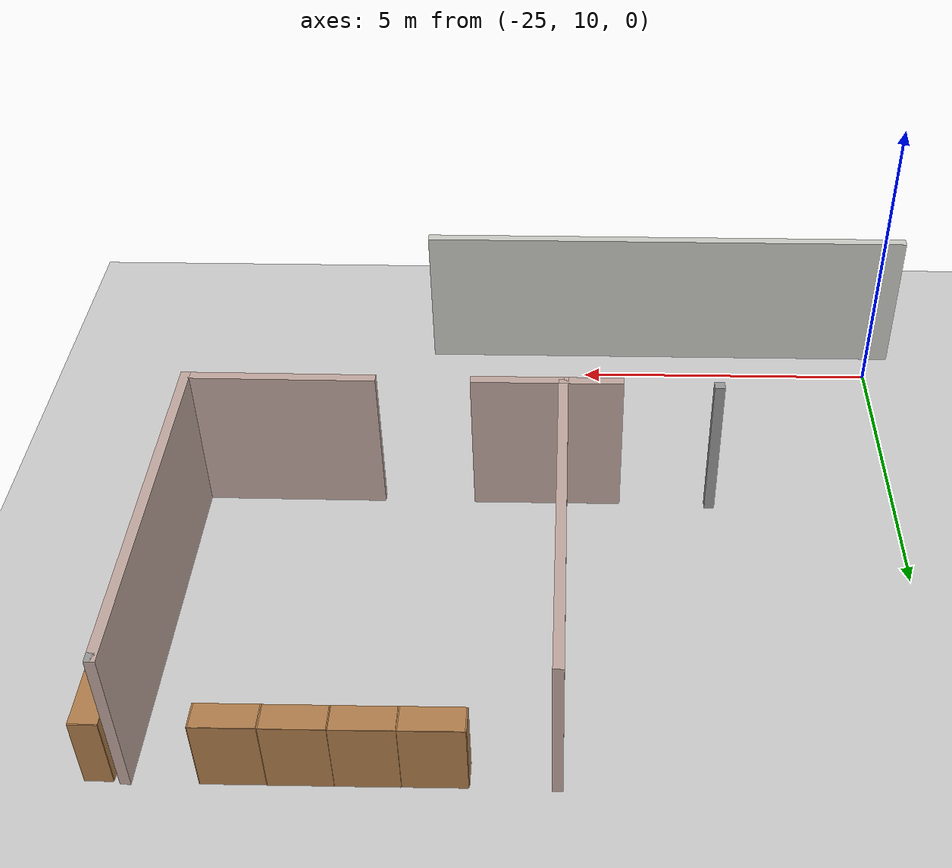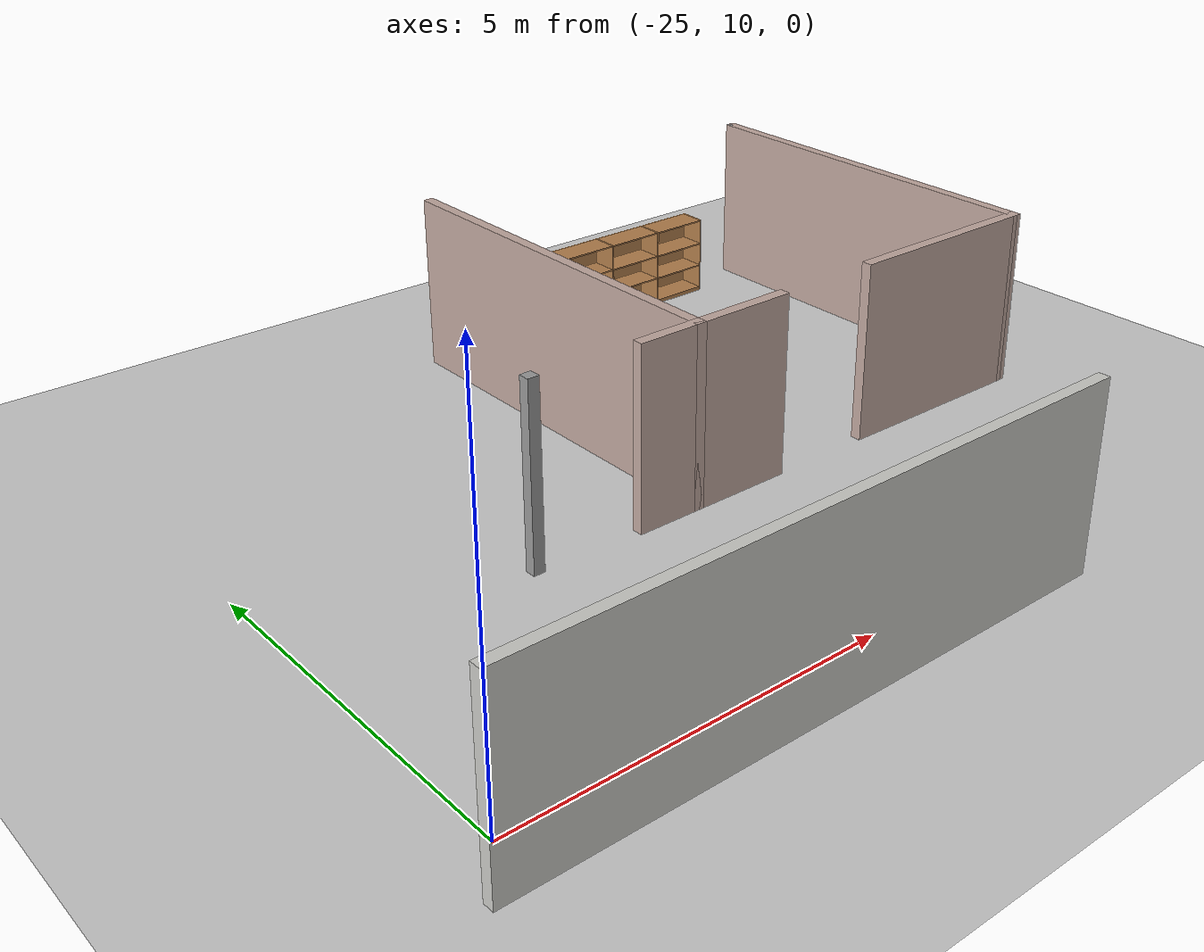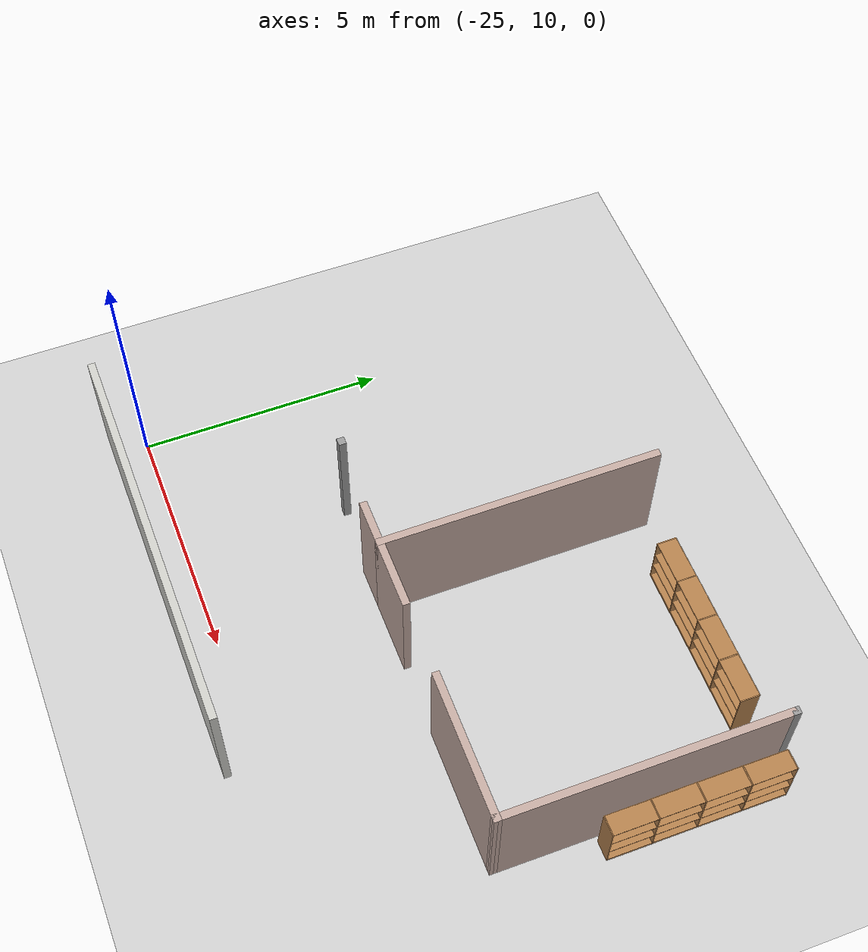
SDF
<sdf version="1.6">
 <world name="default">
  <model name="ground_plane">
   <static>1</static>
   <link name="link">
    <collision name="collision">
     <geometry><plane><normal>0 0 1</normal><size>100 100</size></plane></geometry>
     <surface><friction><ode><mu>100</mu><mu2>50</mu2></ode></friction></surface>
    </collision>
    <visual name="visual">
     <cast_shadows>0</cast_shadows>
     <geometry><plane><normal>0 0 1</normal><size>100 100</size></plane></geometry>
     <material>
      <script><uri>file://media/materials/scripts/gazebo.material</uri><name>Gazebo/Grey</name></script>
     </material>
    </visual>
   </link>
  </model>
  <model name="floor">
   <link name="Wall_222">
    <pose>-22.6395 10.6319 0 0 -0 3.14159</pose>
    <visual name="Wall_222_Visual">
     <pose>0 0 1.25 0 -0 0</pose>
     <geometry><box><size>8.25 0.15 2.5</size></box></geometry>
     <material>
      <script><uri>file://media/materials/scripts/gazebo.material</uri><name>Gazebo/CeilingTiled</name></script>
      <ambient>0.760784 0.662745 0.627451 1</ambient>
     </material>
     <meta><layer>0</layer></meta>
    </visual>
    <collision name="Wall_222_Collision">
     <pose>0 0 1.25 0 -0 0</pose>
     <geometry><box><size>8.25 0.15 2.5</size></box></geometry>
     <surface>
      <friction>
       <ode><mu>1</mu><mu2>1</mu2><fdir1>0 0 0</fdir1><slip1>0</slip1><slip2>0</slip2></ode>
       <torsional>
        <coefficient>1</coefficient>
        <patch_radius>0</patch_radius>
        <surface_radius>0</surface_radius>
        <use_patch_radius>1</use_patch_radius>
        <ode><slip>0</slip></ode>
       </torsional>
      </friction>
      <bounce><restitution_coefficient>0</restitution_coefficient><threshold>1e+06</threshold></bounce>
      <contact>
       <collide_without_contact>0</collide_without_contact>
       <collide_without_contact_bitmask>1</collide_without_contact_bitmask>
       <collide_bitmask>1</collide_bitmask>
       <ode>
        <soft_cfm>0</soft_cfm>
        <soft_erp>0.2</soft_erp>
        <kp>1e+13</kp>
        <kd>1</kd>
        <max_vel>0.01</max_vel>
        <min_depth>0</min_depth>
       </ode>
       <bullet>
        <split_impulse>1</split_impulse>
        <split_impulse_penetration_threshold>-0.01</split_impulse_penetration_threshold>
        <soft_cfm>0</soft_cfm>
        <soft_erp>0.2</soft_erp>
        <kp>1e+13</kp>
        <kd>1</kd>
       </bullet>
      </contact>
     </surface>
    </collision>
   </link>
   <link name="Wall_59">
    <pose>-23.2723 14.6342 0 0 -0 0</pose>
    <visual name="Wall_59_Visual">
     <pose>0 0 1.25 0 -0 0</pose>
     <geometry><box><size>0.16 0.15 2.5</size></box></geometry>
     <material>
      <script><uri>file://media/materials/scripts/gazebo.material</uri><name>Gazebo/Grey</name></script>
      <ambient>1 1 1 1</ambient>
     </material>
     <meta><layer>0</layer></meta>
    </visual>
    <collision name="Wall_59_Collision">
     <pose>0 0 1.25 0 -0 0</pose>
     <geometry><box><size>0.16 0.15 2.5</size></box></geometry>
     <surface>
      <friction>
       <ode><mu>1</mu><mu2>1</mu2><fdir1>0 0 0</fdir1><slip1>0</slip1><slip2>0</slip2></ode>
       <torsional>
        <coefficient>1</coefficient>
        <patch_radius>0</patch_radius>
        <surface_radius>0</surface_radius>
        <use_patch_radius>1</use_patch_radius>
        <ode><slip>0</slip></ode>
       </torsional>
      </friction>
      <bounce><restitution_coefficient>0</restitution_coefficient><threshold>1e+06</threshold></bounce>
      <contact>
       <collide_without_contact>0</collide_without_contact>
       <collide_without_contact_bitmask>1</collide_without_contact_bitmask>
       <collide_bitmask>1</collide_bitmask>
       <ode>
        <soft_cfm>0</soft_cfm>
        <soft_erp>0.2</soft_erp>
        <kp>1e+13</kp>
        <kd>1</kd>
        <max_vel>0.01</max_vel>
        <min_depth>0</min_depth>
       </ode>
       <bullet>
        <split_impulse>1</split_impulse>
        <split_impulse_penetration_threshold>-0.01</split_impulse_penetration_threshold>
        <soft_cfm>0</soft_cfm>
        <soft_erp>0.2</soft_erp>
        <kp>1e+13</kp>
        <kd>1</kd>
       </bullet>
      </contact>
     </surface>
    </collision>
   </link>
   <link name="Wall_61">
    <pose>-21.3201 14.5529 0 0 -0 0</pose>
    <visual name="Wall_61_Visual">
     <pose>0 0 1.25 0 -0 0</pose>
     <geometry><box><size>1 0.15 2.5</size></box></geometry>
     <material>
      <script><uri>file://media/materials/scripts/gazebo.material</uri><name>Gazebo/Grey</name></script>
      <ambient>0.760784 0.662745 0.627451 1</ambient>
     </material>
     <meta><layer>0</layer></meta>
    </visual>
    <collision name="Wall_61_Collision">
     <pose>0 0 1.25 0 -0 0</pose>
     <geometry><box><size>1 0.15 2.5</size></box></geometry>
     <surface>
      <friction>
       <ode><mu>1</mu><mu2>1</mu2><fdir1>0 0 0</fdir1><slip1>0</slip1><slip2>0</slip2></ode>
       <torsional>
        <coefficient>1</coefficient>
        <patch_radius>0</patch_radius>
        <surface_radius>0</surface_radius>
        <use_patch_radius>1</use_patch_radius>
        <ode><slip>0</slip></ode>
       </torsional>
      </friction>
      <bounce><restitution_coefficient>0</restitution_coefficient><threshold>1e+06</threshold></bounce>
      <contact>
       <collide_without_contact>0</collide_without_contact>
       <collide_without_contact_bitmask>1</collide_without_contact_bitmask>
       <collide_bitmask>1</collide_bitmask>
       <ode>
        <soft_cfm>0</soft_cfm>
        <soft_erp>0.2</soft_erp>
        <kp>1e+13</kp>
        <kd>1</kd>
        <max_vel>0.01</max_vel>
        <min_depth>0</min_depth>
       </ode>
       <bullet>
        <split_impulse>1</split_impulse>
        <split_impulse_penetration_threshold>-0.01</split_impulse_penetration_threshold>
        <soft_cfm>0</soft_cfm>
        <soft_erp>0.2</soft_erp>
        <kp>1e+13</kp>
        <kd>1</kd>
       </bullet>
      </contact>
     </surface>
    </collision>
   </link>
   <link name="Wall_62">
    <pose>-20.8951 17.3529 0 0 -0 1.5708</pose>
    <visual name="Wall_62_Visual">
     <pose>0 0 1.25 0 -0 0</pose>
     <geometry><box><size>5.75 0.15 2.5</size></box></geometry>
     <material>
      <script><uri>file://media/materials/scripts/gazebo.material</uri><name>Gazebo/Grey</name></script>
      <ambient>0.760784 0.662745 0.627451 1</ambient>
     </material>
     <meta><layer>0</layer></meta>
    </visual>
    <collision name="Wall_62_Collision">
     <pose>0 0 1.25 0 -0 0</pose>
     <geometry><box><size>5.75 0.15 2.5</size></box></geometry>
     <surface>
      <friction>
       <ode><mu>1</mu><mu2>1</mu2><fdir1>0 0 0</fdir1><slip1>0</slip1><slip2>0</slip2></ode>
       <torsional>
        <coefficient>1</coefficient>
        <patch_radius>0</patch_radius>
        <surface_radius>0</surface_radius>
        <use_patch_radius>1</use_patch_radius>
        <ode><slip>0</slip></ode>
       </torsional>
      </friction>
      <bounce><restitution_coefficient>0</restitution_coefficient><threshold>1e+06</threshold></bounce>
      <contact>
       <collide_without_contact>0</collide_without_contact>
       <collide_without_contact_bitmask>1</collide_without_contact_bitmask>
       <collide_bitmask>1</collide_bitmask>
       <ode>
        <soft_cfm>0</soft_cfm>
        <soft_erp>0.2</soft_erp>
        <kp>1e+13</kp>
        <kd>1</kd>
        <max_vel>0.01</max_vel>
        <min_depth>0</min_depth>
       </ode>
       <bullet>
        <split_impulse>1</split_impulse>
        <split_impulse_penetration_threshold>-0.01</split_impulse_penetration_threshold>
        <soft_cfm>0</soft_cfm>
        <soft_erp>0.2</soft_erp>
        <kp>1e+13</kp>
        <kd>1</kd>
       </bullet>
      </contact>
     </surface>
    </collision>
   </link>
   <link name="Wall_64">
    <pose>-20.2201 14.5529 0 0 -0 0</pose>
    <visual name="Wall_64_Visual">
     <pose>0 0 1.25 0 -0 0</pose>
     <geometry><box><size>1.5 0.15 2.5</size></box></geometry>
     <material>
      <script><uri>file://media/materials/scripts/gazebo.material</uri><name>Gazebo/Grey</name></script>
      <ambient>0.760784 0.662745 0.627451 1</ambient>
     </material>
     <meta><layer>0</layer></meta>
    </visual>
    <collision name="Wall_64_Collision">
     <pose>0 0 1.25 0 -0 0</pose>
     <geometry><box><size>1.5 0.15 2.5</size></box></geometry>
     <surface>
      <friction>
       <ode><mu>1</mu><mu2>1</mu2><fdir1>0 0 0</fdir1><slip1>0</slip1><slip2>0</slip2></ode>
       <torsional>
        <coefficient>1</coefficient>
        <patch_radius>0</patch_radius>
        <surface_radius>0</surface_radius>
        <use_patch_radius>1</use_patch_radius>
        <ode><slip>0</slip></ode>
       </torsional>
      </friction>
      <bounce><restitution_coefficient>0</restitution_coefficient><threshold>1e+06</threshold></bounce>
      <contact>
       <collide_without_contact>0</collide_without_contact>
       <collide_without_contact_bitmask>1</collide_without_contact_bitmask>
       <collide_bitmask>1</collide_bitmask>
       <ode>
        <soft_cfm>0</soft_cfm>
        <soft_erp>0.2</soft_erp>
        <kp>1e+13</kp>
        <kd>1</kd>
        <max_vel>0.01</max_vel>
        <min_depth>0</min_depth>
       </ode>
       <bullet>
        <split_impulse>1</split_impulse>
        <split_impulse_penetration_threshold>-0.01</split_impulse_penetration_threshold>
        <soft_cfm>0</soft_cfm>
        <soft_erp>0.2</soft_erp>
        <kp>1e+13</kp>
        <kd>1</kd>
       </bullet>
      </contact>
     </surface>
    </collision>
   </link>
   <link name="Wall_66">
    <pose>-16.5201 14.5452 0 0 0 -0.005419</pose>
    <visual name="Wall_66_Visual">
     <pose>0 0 1.25 0 -0 0</pose>
     <geometry><box><size>3.00004 0.15 2.5</size></box></geometry>
     <material>
      <script><uri>file://media/materials/scripts/gazebo.material</uri><name>Gazebo/Grey</name></script>
      <ambient>0.760784 0.662745 0.627451 1</ambient>
     </material>
     <meta><layer>0</layer></meta>
    </visual>
    <collision name="Wall_66_Collision">
     <pose>0 0 1.25 0 -0 0</pose>
     <geometry><box><size>3.00004 0.15 2.5</size></box></geometry>
     <surface>
      <friction>
       <ode><mu>1</mu><mu2>1</mu2><fdir1>0 0 0</fdir1><slip1>0</slip1><slip2>0</slip2></ode>
       <torsional>
        <coefficient>1</coefficient>
        <patch_radius>0</patch_radius>
        <surface_radius>0</surface_radius>
        <use_patch_radius>1</use_patch_radius>
        <ode><slip>0</slip></ode>
       </torsional>
      </friction>
      <bounce><restitution_coefficient>0</restitution_coefficient><threshold>1e+06</threshold></bounce>
      <contact>
       <collide_without_contact>0</collide_without_contact>
       <collide_without_contact_bitmask>1</collide_without_contact_bitmask>
       <collide_bitmask>1</collide_bitmask>
       <ode>
        <soft_cfm>0</soft_cfm>
        <soft_erp>0.2</soft_erp>
        <kp>1e+13</kp>
        <kd>1</kd>
        <max_vel>0.01</max_vel>
        <min_depth>0</min_depth>
       </ode>
       <bullet>
        <split_impulse>1</split_impulse>
        <split_impulse_penetration_threshold>-0.01</split_impulse_penetration_threshold>
        <soft_cfm>0</soft_cfm>
        <soft_erp>0.2</soft_erp>
        <kp>1e+13</kp>
        <kd>1</kd>
       </bullet>
      </contact>
     </surface>
    </collision>
   </link>
   <link name="Wall_67">
    <pose>-15.0951 17.3452 0 0 -0 1.5708</pose>
    <visual name="Wall_67_Visual">
     <pose>0 0 1.25 0 -0 0</pose>
     <geometry><box><size>5.76544 0.15 2.5</size></box></geometry>
     <material>
      <script><uri>file://media/materials/scripts/gazebo.material</uri><name>Gazebo/Grey</name></script>
      <ambient>0.760784 0.662745 0.627451 1</ambient>
     </material>
     <meta><layer>0</layer></meta>
    </visual>
    <collision name="Wall_67_Collision">
     <pose>0 0 1.25 0 -0 0</pose>
     <geometry><box><size>5.76544 0.15 2.5</size></box></geometry>
     <surface>
      <friction>
       <ode><mu>1</mu><mu2>1</mu2><fdir1>0 0 0</fdir1><slip1>0</slip1><slip2>0</slip2></ode>
       <torsional>
        <coefficient>1</coefficient>
        <patch_radius>0</patch_radius>
        <surface_radius>0</surface_radius>
        <use_patch_radius>1</use_patch_radius>
        <ode><slip>0</slip></ode>
       </torsional>
      </friction>
      <bounce><restitution_coefficient>0</restitution_coefficient><threshold>1e+06</threshold></bounce>
      <contact>
       <collide_without_contact>0</collide_without_contact>
       <collide_without_contact_bitmask>1</collide_without_contact_bitmask>
       <collide_bitmask>1</collide_bitmask>
       <ode>
        <soft_cfm>0</soft_cfm>
        <soft_erp>0.2</soft_erp>
        <kp>1e+13</kp>
        <kd>1</kd>
        <max_vel>0.01</max_vel>
        <min_depth>0</min_depth>
       </ode>
       <bullet>
        <split_impulse>1</split_impulse>
        <split_impulse_penetration_threshold>-0.01</split_impulse_penetration_threshold>
        <soft_cfm>0</soft_cfm>
        <soft_erp>0.2</soft_erp>
        <kp>1e+13</kp>
        <kd>1</kd>
       </bullet>
      </contact>
     </surface>
    </collision>
   </link>
   <link name="Wall_68">
    <pose>-15.0951 20.1529 0 0 -0 0</pose>
    <visual name="Wall_68_Visual">
     <pose>0 0 1.25 0 -0 0</pose>
     <geometry><box><size>0.15 0.15 2.5</size></box></geometry>
     <material>
      <script><uri>file://media/materials/scripts/gazebo.material</uri><name>Gazebo/Grey</name></script>
      <ambient>1 1 1 1</ambient>
     </material>
     <meta><layer>0</layer></meta>
    </visual>
    <collision name="Wall_68_Collision">
     <pose>0 0 1.25 0 -0 0</pose>
     <geometry><box><size>0.15 0.15 2.5</size></box></geometry>
     <surface>
      <friction>
       <ode><mu>1</mu><mu2>1</mu2><fdir1>0 0 0</fdir1><slip1>0</slip1><slip2>0</slip2></ode>
       <torsional>
        <coefficient>1</coefficient>
        <patch_radius>0</patch_radius>
        <surface_radius>0</surface_radius>
        <use_patch_radius>1</use_patch_radius>
        <ode><slip>0</slip></ode>
       </torsional>
      </friction>
      <bounce><restitution_coefficient>0</restitution_coefficient><threshold>1e+06</threshold></bounce>
      <contact>
       <collide_without_contact>0</collide_without_contact>
       <collide_without_contact_bitmask>1</collide_without_contact_bitmask>
       <collide_bitmask>1</collide_bitmask>
       <ode>
        <soft_cfm>0</soft_cfm>
        <soft_erp>0.2</soft_erp>
        <kp>1e+13</kp>
        <kd>1</kd>
        <max_vel>0.01</max_vel>
        <min_depth>0</min_depth>
       </ode>
       <bullet>
        <split_impulse>1</split_impulse>
        <split_impulse_penetration_threshold>-0.01</split_impulse_penetration_threshold>
        <soft_cfm>0</soft_cfm>
        <soft_erp>0.2</soft_erp>
        <kp>1e+13</kp>
        <kd>1</kd>
       </bullet>
      </contact>
     </surface>
    </collision>
   </link>
   <static>1</static>
   <pose>1.26361 -1.27025 0 0 -0 0</pose>
  </model>
  <model name="Bookshelf-4_clone_25">
   <model name="bookshelf">
    <static>1</static>
    <link name="link">
     <inertial><mass>1</mass></inertial>
     <collision name="back">
      <pose>0 0.005 0.6 0 -0 0</pose>
      <geometry><box><size>0.9 0.01 1.2</size></box></geometry>
     </collision>
     <visual name="visual1">
      <pose>0 0.005 0.6 0 -0 0</pose>
      <geometry><box><size>0.9 0.01 1.2</size></box></geometry>
      <material>
       <script><uri>file://media/materials/scripts/gazebo.material</uri><name>Gazebo/Wood</name></script>
      </material>
     </visual>
     <collision name="left_side">
      <pose>0.45 -0.195 0.6 0 -0 0</pose>
      <geometry><box><size>0.02 0.4 1.2</size></box></geometry>
     </collision>
     <visual name="visual2">
      <pose>0.45 -0.195 0.6 0 -0 0</pose>
      <geometry><box><size>0.02 0.4 1.2</size></box></geometry>
      <material>
       <script><uri>file://media/materials/scripts/gazebo.material</uri><name>Gazebo/Wood</name></script>
      </material>
     </visual>
     <collision name="right_side">
      <pose>-0.45 -0.195 0.6 0 -0 0</pose>
      <geometry><box><size>0.02 0.4 1.2</size></box></geometry>
     </collision>
     <visual name="visual3">
      <pose>-0.45 -0.195 0.6 0 -0 0</pose>
      <geometry><box><size>0.02 0.4 1.2</size></box></geometry>
      <material>
       <script><uri>file://media/materials/scripts/gazebo.material</uri><name>Gazebo/Wood</name></script>
      </material>
     </visual>
     <collision name="bottom">
      <pose>0 -0.195 0.03 0 -0 0</pose>
      <geometry><box><size>0.88 0.4 0.06</size></box></geometry>
     </collision>
     <visual name="visual4">
      <pose>0 -0.195 0.03 0 -0 0</pose>
      <geometry><box><size>0.88 0.4 0.06</size></box></geometry>
      <material>
       <script><uri>file://media/materials/scripts/gazebo.material</uri><name>Gazebo/Wood</name></script>
      </material>
     </visual>
     <collision name="top">
      <pose>0 -0.195 1.19 0 -0 0</pose>
      <geometry><box><size>0.88 0.4 0.02</size></box></geometry>
     </collision>
     <visual name="visual5">
      <pose>0 -0.195 1.19 0 -0 0</pose>
      <geometry><box><size>0.88 0.4 0.02</size></box></geometry>
      <material>
       <script><uri>file://media/materials/scripts/gazebo.material</uri><name>Gazebo/Wood</name></script>
      </material>
     </visual>
     <collision name="low_shelf">
      <pose>0 -0.195 0.43 0 -0 0</pose>
      <geometry><box><size>0.88 0.4 0.02</size></box></geometry>
     </collision>
     <visual name="visual6">
      <pose>0 -0.195 0.43 0 -0 0</pose>
      <geometry><box><size>0.88 0.4 0.02</size></box></geometry>
      <material>
       <script><uri>file://media/materials/scripts/gazebo.material</uri><name>Gazebo/Wood</name></script>
      </material>
     </visual>
     <collision name="high_shelf">
      <pose>0 -0.195 0.8 0 -0 0</pose>
      <geometry><box><size>0.88 0.4 0.02</size></box></geometry>
     </collision>
     <visual name="visual7">
      <pose>0 -0.195 0.8 0 -0 0</pose>
      <geometry><box><size>0.88 0.4 0.02</size></box></geometry>
      <material>
       <script><uri>file://media/materials/scripts/gazebo.material</uri><name>Gazebo/Wood</name></script>
      </material>
     </visual>
    </link>
    <pose>-1.35671 -0.002097 0 0 -0 0</pose>
   </model>
   <model name="bookshelf_0">
    <static>1</static>
    <link name="link">
     <inertial><mass>1</mass></inertial>
     <collision name="back">
      <pose>0 0.005 0.6 0 -0 0</pose>
      <geometry><box><size>0.9 0.01 1.2</size></box></geometry>
     </collision>
     <visual name="visual1">
      <pose>0 0.005 0.6 0 -0 0</pose>
      <geometry><box><size>0.9 0.01 1.2</size></box></geometry>
      <material>
       <script><uri>file://media/materials/scripts/gazebo.material</uri><name>Gazebo/Wood</name></script>
      </material>
     </visual>
     <collision name="left_side">
      <pose>0.45 -0.195 0.6 0 -0 0</pose>
      <geometry><box><size>0.02 0.4 1.2</size></box></geometry>
     </collision>
     <visual name="visual2">
      <pose>0.45 -0.195 0.6 0 -0 0</pose>
      <geometry><box><size>0.02 0.4 1.2</size></box></geometry>
      <material>
       <script><uri>file://media/materials/scripts/gazebo.material</uri><name>Gazebo/Wood</name></script>
      </material>
     </visual>
     <collision name="right_side">
      <pose>-0.45 -0.195 0.6 0 -0 0</pose>
      <geometry><box><size>0.02 0.4 1.2</size></box></geometry>
     </collision>
     <visual name="visual3">
      <pose>-0.45 -0.195 0.6 0 -0 0</pose>
      <geometry><box><size>0.02 0.4 1.2</size></box></geometry>
      <material>
       <script><uri>file://media/materials/scripts/gazebo.material</uri><name>Gazebo/Wood</name></script>
      </material>
     </visual>
     <collision name="bottom">
      <pose>0 -0.195 0.03 0 -0 0</pose>
      <geometry><box><size>0.88 0.4 0.06</size></box></geometry>
     </collision>
     <visual name="visual4">
      <pose>0 -0.195 0.03 0 -0 0</pose>
      <geometry><box><size>0.88 0.4 0.06</size></box></geometry>
      <material>
       <script><uri>file://media/materials/scripts/gazebo.material</uri><name>Gazebo/Wood</name></script>
      </material>
     </visual>
     <collision name="top">
      <pose>0 -0.195 1.19 0 -0 0</pose>
      <geometry><box><size>0.88 0.4 0.02</size></box></geometry>
     </collision>
     <visual name="visual5">
      <pose>0 -0.195 1.19 0 -0 0</pose>
      <geometry><box><size>0.88 0.4 0.02</size></box></geometry>
      <material>
       <script><uri>file://media/materials/scripts/gazebo.material</uri><name>Gazebo/Wood</name></script>
      </material>
     </visual>
     <collision name="low_shelf">
      <pose>0 -0.195 0.43 0 -0 0</pose>
      <geometry><box><size>0.88 0.4 0.02</size></box></geometry>
     </collision>
     <visual name="visual6">
      <pose>0 -0.195 0.43 0 -0 0</pose>
      <geometry><box><size>0.88 0.4 0.02</size></box></geometry>
      <material>
       <script><uri>file://media/materials/scripts/gazebo.material</uri><name>Gazebo/Wood</name></script>
      </material>
     </visual>
     <collision name="high_shelf">
      <pose>0 -0.195 0.8 0 -0 0</pose>
      <geometry><box><size>0.88 0.4 0.02</size></box></geometry>
     </collision>
     <visual name="visual7">
      <pose>0 -0.195 0.8 0 -0 0</pose>
      <geometry><box><size>0.88 0.4 0.02</size></box></geometry>
      <material>
       <script><uri>file://media/materials/scripts/gazebo.material</uri><name>Gazebo/Wood</name></script>
      </material>
     </visual>
    </link>
    <pose>-0.452974 0.001386 0 0 -0 0</pose>
   </model>
   <model name="bookshelf_1">
    <static>1</static>
    <link name="link">
     <inertial><mass>1</mass></inertial>
     <collision name="back">
      <pose>0 0.005 0.6 0 -0 0</pose>
      <geometry><box><size>0.9 0.01 1.2</size></box></geometry>
     </collision>
     <visual name="visual1">
      <pose>0 0.005 0.6 0 -0 0</pose>
      <geometry><box><size>0.9 0.01 1.2</size></box></geometry>
      <material>
       <script><uri>file://media/materials/scripts/gazebo.material</uri><name>Gazebo/Wood</name></script>
      </material>
     </visual>
     <collision name="left_side">
      <pose>0.45 -0.195 0.6 0 -0 0</pose>
      <geometry><box><size>0.02 0.4 1.2</size></box></geometry>
     </collision>
     <visual name="visual2">
      <pose>0.45 -0.195 0.6 0 -0 0</pose>
      <geometry><box><size>0.02 0.4 1.2</size></box></geometry>
      <material>
       <script><uri>file://media/materials/scripts/gazebo.material</uri><name>Gazebo/Wood</name></script>
      </material>
     </visual>
     <collision name="right_side">
      <pose>-0.45 -0.195 0.6 0 -0 0</pose>
      <geometry><box><size>0.02 0.4 1.2</size></box></geometry>
     </collision>
     <visual name="visual3">
      <pose>-0.45 -0.195 0.6 0 -0 0</pose>
      <geometry><box><size>0.02 0.4 1.2</size></box></geometry>
      <material>
       <script><uri>file://media/materials/scripts/gazebo.material</uri><name>Gazebo/Wood</name></script>
      </material>
     </visual>
     <collision name="bottom">
      <pose>0 -0.195 0.03 0 -0 0</pose>
      <geometry><box><size>0.88 0.4 0.06</size></box></geometry>
     </collision>
     <visual name="visual4">
      <pose>0 -0.195 0.03 0 -0 0</pose>
      <geometry><box><size>0.88 0.4 0.06</size></box></geometry>
      <material>
       <script><uri>file://media/materials/scripts/gazebo.material</uri><name>Gazebo/Wood</name></script>
      </material>
     </visual>
     <collision name="top">
      <pose>0 -0.195 1.19 0 -0 0</pose>
      <geometry><box><size>0.88 0.4 0.02</size></box></geometry>
     </collision>
     <visual name="visual5">
      <pose>0 -0.195 1.19 0 -0 0</pose>
      <geometry><box><size>0.88 0.4 0.02</size></box></geometry>
      <material>
       <script><uri>file://media/materials/scripts/gazebo.material</uri><name>Gazebo/Wood</name></script>
      </material>
     </visual>
     <collision name="low_shelf">
      <pose>0 -0.195 0.43 0 -0 0</pose>
      <geometry><box><size>0.88 0.4 0.02</size></box></geometry>
     </collision>
     <visual name="visual6">
      <pose>0 -0.195 0.43 0 -0 0</pose>
      <geometry><box><size>0.88 0.4 0.02</size></box></geometry>
      <material>
       <script><uri>file://media/materials/scripts/gazebo.material</uri><name>Gazebo/Wood</name></script>
      </material>
     </visual>
     <collision name="high_shelf">
      <pose>0 -0.195 0.8 0 -0 0</pose>
      <geometry><box><size>0.88 0.4 0.02</size></box></geometry>
     </collision>
     <visual name="visual7">
      <pose>0 -0.195 0.8 0 -0 0</pose>
      <geometry><box><size>0.88 0.4 0.02</size></box></geometry>
      <material>
       <script><uri>file://media/materials/scripts/gazebo.material</uri><name>Gazebo/Wood</name></script>
      </material>
     </visual>
    </link>
    <pose>0.450456 0.000733 0 0 -0 0</pose>
   </model>
   <model name="bookshelf_2">
    <static>1</static>
    <link name="link">
     <inertial><mass>1</mass></inertial>
     <collision name="back">
      <pose>0 0.005 0.6 0 -0 0</pose>
      <geometry><box><size>0.9 0.01 1.2</size></box></geometry>
     </collision>
     <visual name="visual1">
      <pose>0 0.005 0.6 0 -0 0</pose>
      <geometry><box><size>0.9 0.01 1.2</size></box></geometry>
      <material>
       <script><uri>file://media/materials/scripts/gazebo.material</uri><name>Gazebo/Wood</name></script>
      </material>
     </visual>
     <collision name="left_side">
      <pose>0.45 -0.195 0.6 0 -0 0</pose>
      <geometry><box><size>0.02 0.4 1.2</size></box></geometry>
     </collision>
     <visual name="visual2">
      <pose>0.45 -0.195 0.6 0 -0 0</pose>
      <geometry><box><size>0.02 0.4 1.2</size></box></geometry>
      <material>
       <script><uri>file://media/materials/scripts/gazebo.material</uri><name>Gazebo/Wood</name></script>
      </material>
     </visual>
     <collision name="right_side">
      <pose>-0.45 -0.195 0.6 0 -0 0</pose>
      <geometry><box><size>0.02 0.4 1.2</size></box></geometry>
     </collision>
     <visual name="visual3">
      <pose>-0.45 -0.195 0.6 0 -0 0</pose>
      <geometry><box><size>0.02 0.4 1.2</size></box></geometry>
      <material>
       <script><uri>file://media/materials/scripts/gazebo.material</uri><name>Gazebo/Wood</name></script>
      </material>
     </visual>
     <collision name="bottom">
      <pose>0 -0.195 0.03 0 -0 0</pose>
      <geometry><box><size>0.88 0.4 0.06</size></box></geometry>
     </collision>
     <visual name="visual4">
      <pose>0 -0.195 0.03 0 -0 0</pose>
      <geometry><box><size>0.88 0.4 0.06</size></box></geometry>
      <material>
       <script><uri>file://media/materials/scripts/gazebo.material</uri><name>Gazebo/Wood</name></script>
      </material>
     </visual>
     <collision name="top">
      <pose>0 -0.195 1.19 0 -0 0</pose>
      <geometry><box><size>0.88 0.4 0.02</size></box></geometry>
     </collision>
     <visual name="visual5">
      <pose>0 -0.195 1.19 0 -0 0</pose>
      <geometry><box><size>0.88 0.4 0.02</size></box></geometry>
      <material>
       <script><uri>file://media/materials/scripts/gazebo.material</uri><name>Gazebo/Wood</name></script>
      </material>
     </visual>
     <collision name="low_shelf">
      <pose>0 -0.195 0.43 0 -0 0</pose>
      <geometry><box><size>0.88 0.4 0.02</size></box></geometry>
     </collision>
     <visual name="visual6">
      <pose>0 -0.195 0.43 0 -0 0</pose>
      <geometry><box><size>0.88 0.4 0.02</size></box></geometry>
      <material>
       <script><uri>file://media/materials/scripts/gazebo.material</uri><name>Gazebo/Wood</name></script>
      </material>
     </visual>
     <collision name="high_shelf">
      <pose>0 -0.195 0.8 0 -0 0</pose>
      <geometry><box><size>0.88 0.4 0.02</size></box></geometry>
     </collision>
     <visual name="visual7">
      <pose>0 -0.195 0.8 0 -0 0</pose>
      <geometry><box><size>0.88 0.4 0.02</size></box></geometry>
      <material>
       <script><uri>file://media/materials/scripts/gazebo.material</uri><name>Gazebo/Wood</name></script>
      </material>
     </visual>
    </link>
    <pose>1.35922 -1.7e-05 0 0 -0 0</pose>
   </model>
   <static>0</static>
   <pose>-16.637 18.9219 0 0 -0 0</pose>
  </model>
  <model name="Bookshelf-4_clone_31">
   <model name="bookshelf">
    <static>1</static>
    <link name="link">
     <inertial><mass>1</mass></inertial>
     <collision name="back">
      <pose>0 0.005 0.6 0 -0 0</pose>
      <geometry><box><size>0.9 0.01 1.2</size></box></geometry>
     </collision>
     <visual name="visual1">
      <pose>0 0.005 0.6 0 -0 0</pose>
      <geometry><box><size>0.9 0.01 1.2</size></box></geometry>
      <material>
       <script><uri>file://media/materials/scripts/gazebo.material</uri><name>Gazebo/Wood</name></script>
      </material>
     </visual>
     <collision name="left_side">
      <pose>0.45 -0.195 0.6 0 -0 0</pose>
      <geometry><box><size>0.02 0.4 1.2</size></box></geometry>
     </collision>
     <visual name="visual2">
      <pose>0.45 -0.195 0.6 0 -0 0</pose>
      <geometry><box><size>0.02 0.4 1.2</size></box></geometry>
      <material>
       <script><uri>file://media/materials/scripts/gazebo.material</uri><name>Gazebo/Wood</name></script>
      </material>
     </visual>
     <collision name="right_side">
      <pose>-0.45 -0.195 0.6 0 -0 0</pose>
      <geometry><box><size>0.02 0.4 1.2</size></box></geometry>
     </collision>
     <visual name="visual3">
      <pose>-0.45 -0.195 0.6 0 -0 0</pose>
      <geometry><box><size>0.02 0.4 1.2</size></box></geometry>
      <material>
       <script><uri>file://media/materials/scripts/gazebo.material</uri><name>Gazebo/Wood</name></script>
      </material>
     </visual>
     <collision name="bottom">
      <pose>0 -0.195 0.03 0 -0 0</pose>
      <geometry><box><size>0.88 0.4 0.06</size></box></geometry>
     </collision>
     <visual name="visual4">
      <pose>0 -0.195 0.03 0 -0 0</pose>
      <geometry><box><size>0.88 0.4 0.06</size></box></geometry>
      <material>
       <script><uri>file://media/materials/scripts/gazebo.material</uri><name>Gazebo/Wood</name></script>
      </material>
     </visual>
     <collision name="top">
      <pose>0 -0.195 1.19 0 -0 0</pose>
      <geometry><box><size>0.88 0.4 0.02</size></box></geometry>
     </collision>
     <visual name="visual5">
      <pose>0 -0.195 1.19 0 -0 0</pose>
      <geometry><box><size>0.88 0.4 0.02</size></box></geometry>
      <material>
       <script><uri>file://media/materials/scripts/gazebo.material</uri><name>Gazebo/Wood</name></script>
      </material>
     </visual>
     <collision name="low_shelf">
      <pose>0 -0.195 0.43 0 -0 0</pose>
      <geometry><box><size>0.88 0.4 0.02</size></box></geometry>
     </collision>
     <visual name="visual6">
      <pose>0 -0.195 0.43 0 -0 0</pose>
      <geometry><box><size>0.88 0.4 0.02</size></box></geometry>
      <material>
       <script><uri>file://media/materials/scripts/gazebo.material</uri><name>Gazebo/Wood</name></script>
      </material>
     </visual>
     <collision name="high_shelf">
      <pose>0 -0.195 0.8 0 -0 0</pose>
      <geometry><box><size>0.88 0.4 0.02</size></box></geometry>
     </collision>
     <visual name="visual7">
      <pose>0 -0.195 0.8 0 -0 0</pose>
      <geometry><box><size>0.88 0.4 0.02</size></box></geometry>
      <material>
       <script><uri>file://media/materials/scripts/gazebo.material</uri><name>Gazebo/Wood</name></script>
      </material>
     </visual>
    </link>
    <pose>-1.35671 -0.002097 0 0 -0 0</pose>
   </model>
   <model name="bookshelf_0">
    <static>1</static>
    <link name="link">
     <inertial><mass>1</mass></inertial>
     <collision name="back">
      <pose>0 0.005 0.6 0 -0 0</pose>
      <geometry><box><size>0.9 0.01 1.2</size></box></geometry>
     </collision>
     <visual name="visual1">
      <pose>0 0.005 0.6 0 -0 0</pose>
      <geometry><box><size>0.9 0.01 1.2</size></box></geometry>
      <material>
       <script><uri>file://media/materials/scripts/gazebo.material</uri><name>Gazebo/Wood</name></script>
      </material>
     </visual>
     <collision name="left_side">
      <pose>0.45 -0.195 0.6 0 -0 0</pose>
      <geometry><box><size>0.02 0.4 1.2</size></box></geometry>
     </collision>
     <visual name="visual2">
      <pose>0.45 -0.195 0.6 0 -0 0</pose>
      <geometry><box><size>0.02 0.4 1.2</size></box></geometry>
      <material>
       <script><uri>file://media/materials/scripts/gazebo.material</uri><name>Gazebo/Wood</name></script>
      </material>
     </visual>
     <collision name="right_side">
      <pose>-0.45 -0.195 0.6 0 -0 0</pose>
      <geometry><box><size>0.02 0.4 1.2</size></box></geometry>
     </collision>
     <visual name="visual3">
      <pose>-0.45 -0.195 0.6 0 -0 0</pose>
      <geometry><box><size>0.02 0.4 1.2</size></box></geometry>
      <material>
       <script><uri>file://media/materials/scripts/gazebo.material</uri><name>Gazebo/Wood</name></script>
      </material>
     </visual>
     <collision name="bottom">
      <pose>0 -0.195 0.03 0 -0 0</pose>
      <geometry><box><size>0.88 0.4 0.06</size></box></geometry>
     </collision>
     <visual name="visual4">
      <pose>0 -0.195 0.03 0 -0 0</pose>
      <geometry><box><size>0.88 0.4 0.06</size></box></geometry>
      <material>
       <script><uri>file://media/materials/scripts/gazebo.material</uri><name>Gazebo/Wood</name></script>
      </material>
     </visual>
     <collision name="top">
      <pose>0 -0.195 1.19 0 -0 0</pose>
      <geometry><box><size>0.88 0.4 0.02</size></box></geometry>
     </collision>
     <visual name="visual5">
      <pose>0 -0.195 1.19 0 -0 0</pose>
      <geometry><box><size>0.88 0.4 0.02</size></box></geometry>
      <material>
       <script><uri>file://media/materials/scripts/gazebo.material</uri><name>Gazebo/Wood</name></script>
      </material>
     </visual>
     <collision name="low_shelf">
      <pose>0 -0.195 0.43 0 -0 0</pose>
      <geometry><box><size>0.88 0.4 0.02</size></box></geometry>
     </collision>
     <visual name="visual6">
      <pose>0 -0.195 0.43 0 -0 0</pose>
      <geometry><box><size>0.88 0.4 0.02</size></box></geometry>
      <material>
       <script><uri>file://media/materials/scripts/gazebo.material</uri><name>Gazebo/Wood</name></script>
      </material>
     </visual>
     <collision name="high_shelf">
      <pose>0 -0.195 0.8 0 -0 0</pose>
      <geometry><box><size>0.88 0.4 0.02</size></box></geometry>
     </collision>
     <visual name="visual7">
      <pose>0 -0.195 0.8 0 -0 0</pose>
      <geometry><box><size>0.88 0.4 0.02</size></box></geometry>
      <material>
       <script><uri>file://media/materials/scripts/gazebo.material</uri><name>Gazebo/Wood</name></script>
      </material>
     </visual>
    </link>
    <pose>-0.452974 0.001386 0 0 -0 0</pose>
   </model>
   <model name="bookshelf_1">
    <static>1</static>
    <link name="link">
     <inertial><mass>1</mass></inertial>
     <collision name="back">
      <pose>0 0.005 0.6 0 -0 0</pose>
      <geometry><box><size>0.9 0.01 1.2</size></box></geometry>
     </collision>
     <visual name="visual1">
      <pose>0 0.005 0.6 0 -0 0</pose>
      <geometry><box><size>0.9 0.01 1.2</size></box></geometry>
      <material>
       <script><uri>file://media/materials/scripts/gazebo.material</uri><name>Gazebo/Wood</name></script>
      </material>
     </visual>
     <collision name="left_side">
      <pose>0.45 -0.195 0.6 0 -0 0</pose>
      <geometry><box><size>0.02 0.4 1.2</size></box></geometry>
     </collision>
     <visual name="visual2">
      <pose>0.45 -0.195 0.6 0 -0 0</pose>
      <geometry><box><size>0.02 0.4 1.2</size></box></geometry>
      <material>
       <script><uri>file://media/materials/scripts/gazebo.material</uri><name>Gazebo/Wood</name></script>
      </material>
     </visual>
     <collision name="right_side">
      <pose>-0.45 -0.195 0.6 0 -0 0</pose>
      <geometry><box><size>0.02 0.4 1.2</size></box></geometry>
     </collision>
     <visual name="visual3">
      <pose>-0.45 -0.195 0.6 0 -0 0</pose>
      <geometry><box><size>0.02 0.4 1.2</size></box></geometry>
      <material>
       <script><uri>file://media/materials/scripts/gazebo.material</uri><name>Gazebo/Wood</name></script>
      </material>
     </visual>
     <collision name="bottom">
      <pose>0 -0.195 0.03 0 -0 0</pose>
      <geometry><box><size>0.88 0.4 0.06</size></box></geometry>
     </collision>
     <visual name="visual4">
      <pose>0 -0.195 0.03 0 -0 0</pose>
      <geometry><box><size>0.88 0.4 0.06</size></box></geometry>
      <material>
       <script><uri>file://media/materials/scripts/gazebo.material</uri><name>Gazebo/Wood</name></script>
      </material>
     </visual>
     <collision name="top">
      <pose>0 -0.195 1.19 0 -0 0</pose>
      <geometry><box><size>0.88 0.4 0.02</size></box></geometry>
     </collision>
     <visual name="visual5">
      <pose>0 -0.195 1.19 0 -0 0</pose>
      <geometry><box><size>0.88 0.4 0.02</size></box></geometry>
      <material>
       <script><uri>file://media/materials/scripts/gazebo.material</uri><name>Gazebo/Wood</name></script>
      </material>
     </visual>
     <collision name="low_shelf">
      <pose>0 -0.195 0.43 0 -0 0</pose>
      <geometry><box><size>0.88 0.4 0.02</size></box></geometry>
     </collision>
     <visual name="visual6">
      <pose>0 -0.195 0.43 0 -0 0</pose>
      <geometry><box><size>0.88 0.4 0.02</size></box></geometry>
      <material>
       <script><uri>file://media/materials/scripts/gazebo.material</uri><name>Gazebo/Wood</name></script>
      </material>
     </visual>
     <collision name="high_shelf">
      <pose>0 -0.195 0.8 0 -0 0</pose>
      <geometry><box><size>0.88 0.4 0.02</size></box></geometry>
     </collision>
     <visual name="visual7">
      <pose>0 -0.195 0.8 0 -0 0</pose>
      <geometry><box><size>0.88 0.4 0.02</size></box></geometry>
      <material>
       <script><uri>file://media/materials/scripts/gazebo.material</uri><name>Gazebo/Wood</name></script>
      </material>
     </visual>
    </link>
    <pose>0.450456 0.000733 0 0 -0 0</pose>
   </model>
   <model name="bookshelf_2">
    <static>1</static>
    <link name="link">
     <inertial><mass>1</mass></inertial>
     <collision name="back">
      <pose>0 0.005 0.6 0 -0 0</pose>
      <geometry><box><size>0.9 0.01 1.2</size></box></geometry>
     </collision>
     <visual name="visual1">
      <pose>0 0.005 0.6 0 -0 0</pose>
      <geometry><box><size>0.9 0.01 1.2</size></box></geometry>
      <material>
       <script><uri>file://media/materials/scripts/gazebo.material</uri><name>Gazebo/Wood</name></script>
      </material>
     </visual>
     <collision name="left_side">
      <pose>0.45 -0.195 0.6 0 -0 0</pose>
      <geometry><box><size>0.02 0.4 1.2</size></box></geometry>
     </collision>
     <visual name="visual2">
      <pose>0.45 -0.195 0.6 0 -0 0</pose>
      <geometry><box><size>0.02 0.4 1.2</size></box></geometry>
      <material>
       <script><uri>file://media/materials/scripts/gazebo.material</uri><name>Gazebo/Wood</name></script>
      </material>
     </visual>
     <collision name="right_side">
      <pose>-0.45 -0.195 0.6 0 -0 0</pose>
      <geometry><box><size>0.02 0.4 1.2</size></box></geometry>
     </collision>
     <visual name="visual3">
      <pose>-0.45 -0.195 0.6 0 -0 0</pose>
      <geometry><box><size>0.02 0.4 1.2</size></box></geometry>
      <material>
       <script><uri>file://media/materials/scripts/gazebo.material</uri><name>Gazebo/Wood</name></script>
      </material>
     </visual>
     <collision name="bottom">
      <pose>0 -0.195 0.03 0 -0 0</pose>
      <geometry><box><size>0.88 0.4 0.06</size></box></geometry>
     </collision>
     <visual name="visual4">
      <pose>0 -0.195 0.03 0 -0 0</pose>
      <geometry><box><size>0.88 0.4 0.06</size></box></geometry>
      <material>
       <script><uri>file://media/materials/scripts/gazebo.material</uri><name>Gazebo/Wood</name></script>
      </material>
     </visual>
     <collision name="top">
      <pose>0 -0.195 1.19 0 -0 0</pose>
      <geometry><box><size>0.88 0.4 0.02</size></box></geometry>
     </collision>
     <visual name="visual5">
      <pose>0 -0.195 1.19 0 -0 0</pose>
      <geometry><box><size>0.88 0.4 0.02</size></box></geometry>
      <material>
       <script><uri>file://media/materials/scripts/gazebo.material</uri><name>Gazebo/Wood</name></script>
      </material>
     </visual>
     <collision name="low_shelf">
      <pose>0 -0.195 0.43 0 -0 0</pose>
      <geometry><box><size>0.88 0.4 0.02</size></box></geometry>
     </collision>
     <visual name="visual6">
      <pose>0 -0.195 0.43 0 -0 0</pose>
      <geometry><box><size>0.88 0.4 0.02</size></box></geometry>
      <material>
       <script><uri>file://media/materials/scripts/gazebo.material</uri><name>Gazebo/Wood</name></script>
      </material>
     </visual>
     <collision name="high_shelf">
      <pose>0 -0.195 0.8 0 -0 0</pose>
      <geometry><box><size>0.88 0.4 0.02</size></box></geometry>
     </collision>
     <visual name="visual7">
      <pose>0 -0.195 0.8 0 -0 0</pose>
      <geometry><box><size>0.88 0.4 0.02</size></box></geometry>
      <material>
       <script><uri>file://media/materials/scripts/gazebo.material</uri><name>Gazebo/Wood</name></script>
      </material>
     </visual>
    </link>
    <pose>1.35922 -1.7e-05 0 0 -0 0</pose>
   </model>
   <static>0</static>
   <pose>-13.6613 17.0963 0 0 -0 1.5707</pose>
  </model>
 </world>
</sdf>
